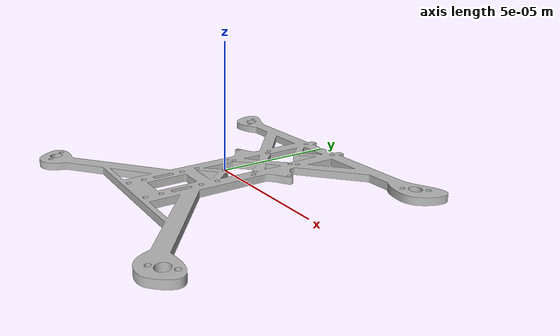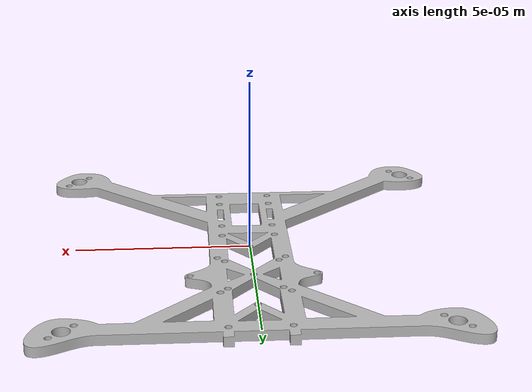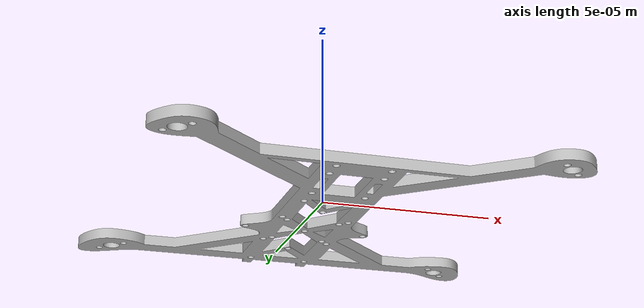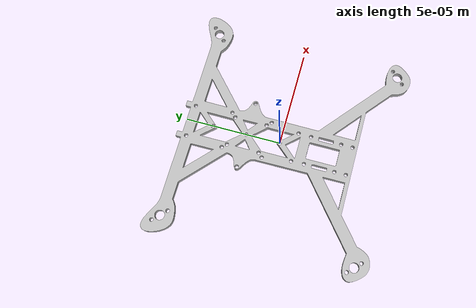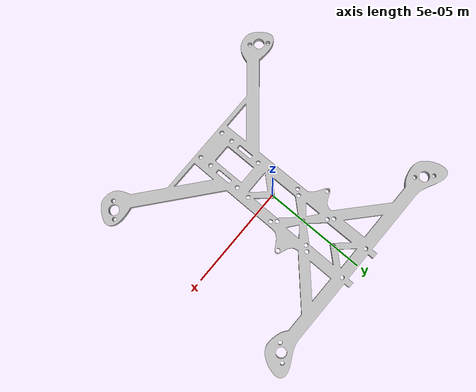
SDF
<?xml version="1.0" encoding="UTF-8"?>
<sdf version="1.9">
  <model name="drone">
    <self_collide>false</self_collide>
    <static>false</static>
    <!--                    BASE LINK                         -->
    <link name="base_link">
      <pose>0 0 0 0 0 0</pose>

      <inertial>
        <mass>1.3116</mass>
        <inertia>
          <ixx>0.003708</ixx>
          <iyy>0.002511</iyy>
          <izz>0.004013</izz>
          <ixy>0</ixy>
          <ixz>-2e-06</ixz>
          <iyz>-1.7e-05</iyz>
        </inertia>
      </inertial>

      <visual name="base_visual">
        <geometry>
          <mesh>
            <scale>0.001 0.001 0.001</scale>
            <uri>model://drone/meshes/base_link.stl</uri>
          </mesh>
        </geometry>
      </visual>

      <collision name="base_collision">
        <geometry>
          <mesh>
            <scale>0.001 0.001 0.001</scale>
            <uri>model://drone/meshes/base_link.stl</uri>
          </mesh>
        </geometry>
      </collision>

      <!-- ===================== SENSORS ===================== -->

      <!-- IMU -->
      <sensor name="imu_sensor" type="imu">
        <gz_frame_id>base_link</gz_frame_id>
        <always_on>1</always_on>
        <update_rate>250</update_rate>
        <imu>
          <angular_velocity>
            <x>
              <noise type="gaussian">
                <mean>0.0</mean>
                <stddev>0.00084</stddev>
              </noise>
            </x>
            <y>
              <noise type="gaussian">
                <mean>0.0</mean>
                <stddev>0.00084</stddev>
              </noise>
            </y>
            <z>
              <noise type="gaussian">
                <mean>0.0</mean>
                <stddev>0.00084</stddev>
              </noise>
            </z>
          </angular_velocity>

          <linear_acceleration>
            <x>
              <noise type="gaussian">
                <mean>0.0</mean>
                <stddev>0.006</stddev>
              </noise>
            </x>
            <y>
              <noise type="gaussian">
                <mean>0.0</mean>
                <stddev>0.006</stddev>
              </noise>
            </y>
            <z>
              <noise type="gaussian">
                <mean>0.0</mean>
                <stddev>0.006</stddev>
              </noise>
            </z>
          </linear_acceleration>
        </imu>
      </sensor>

      <!-- MAGNETOMETER -->
      <sensor name="magnetometer_sensor" type="magnetometer">
        <gz_frame_id>base_link</gz_frame_id>
        <always_on>1</always_on>
        <update_rate>100</update_rate>
        <magnetometer>
          <x>
            <noise type="gaussian"><stddev>0.0001</stddev></noise>
          </x>
          <y>
            <noise type="gaussian"><stddev>0.0001</stddev></noise>
          </y>
          <z>
            <noise type="gaussian"><stddev>0.0001</stddev></noise>
          </z>
        </magnetometer>
      </sensor>

      <!-- BAROMETER -->
      <sensor name="air_pressure_sensor" type="air_pressure">
        <gz_frame_id>base_link</gz_frame_id>
        <always_on>1</always_on>
        <update_rate>50</update_rate>
        <air_pressure>
          <pressure>
            <noise type="gaussian">
              <mean>0</mean>
              <stddev>1.3</stddev>
            </noise>
          </pressure>
        </air_pressure>
      </sensor>

      <!-- GPS -->
      <sensor name="navsat_sensor" type="navsat">
        <gz_frame_id>base_link</gz_frame_id>
        <always_on>1</always_on>
        <update_rate>30</update_rate>
      </sensor>

      <!-- CAMERA -->
      <sensor name="front_camera" type="camera">
        <gz_frame_id>base_link</gz_frame_id>
        <always_on>1</always_on>
        <update_rate>30</update_rate>
        <pose>0.05 0.0 0.03 0 0 0</pose>
        <camera>
          <horizontal_fov>2.705</horizontal_fov>
          <image>
            <width>640</width>
            <height>480</height>
            <format>R8G8B8</format>
          </image>
          <clip>
            <near>0.01</near>
            <far>100</far>
          </clip>
          <lens>
            <type>equidistant</type>
            <scale_to_hfov>true</scale_to_hfov>
          </lens>
        </camera>
        <topic>/drone/camera/image_raw</topic>
      </sensor>

    </link>

    <!-- ===================== ROTORS ===================== -->

    <link name="rotor_0">
      <pose>0.09 -0.09 0.02 0 0 0</pose>
      <inertial><mass>0.01</mass><inertia><ixx>1e-6</ixx><iyy>1e-6</iyy><izz>1e-6</izz></inertia></inertial>
    </link>
    <joint name="rotor_0_joint" type="revolute"><parent>base_link</parent><child>rotor_0</child><axis><xyz>0 0 1</xyz></axis></joint>

    <link name="rotor_1">
      <pose>-0.09 0.09 0.02 0 0 0</pose>
      <inertial><mass>0.01</mass><inertia><ixx>1e-6</ixx><iyy>1e-6</iyy><izz>1e-6</izz></inertia></inertial>
    </link>
    <joint name="rotor_1_joint" type="revolute"><parent>base_link</parent><child>rotor_1</child><axis><xyz>0 0 1</xyz></axis></joint>

    <link name="rotor_2">
      <pose>0.09 0.09 0.02 0 0 0</pose>
      <inertial><mass>0.01</mass><inertia><ixx>1e-6</ixx><iyy>1e-6</iyy><izz>1e-6</izz></inertia></inertial>
    </link>
    <joint name="rotor_2_joint" type="revolute"><parent>base_link</parent><child>rotor_2</child><axis><xyz>0 0 1</xyz></axis></joint>

    <link name="rotor_3">
      <pose>-0.09 -0.09 0.02 0 0 0</pose>
      <inertial><mass>0.01</mass><inertia><ixx>1e-6</ixx><iyy>1e-6</iyy><izz>1e-6</izz></inertia></inertial>
    </link>
    <joint name="rotor_3_joint" type="revolute"><parent>base_link</parent><child>rotor_3</child><axis><xyz>0 0 1</xyz></axis></joint>

    <!-- ===================== MOTOR MODELS ===================== -->

    <!-- MOTOR 0 -->
    <plugin filename="gz-sim-multicopter-motor-model-system"
            name="gz::sim::systems::MulticopterMotorModel">
      <motorNumber>0</motorNumber>
      <jointName>rotor_0_joint</jointName>
      <linkName>rotor_0</linkName>
      <turningDirection>ccw</turningDirection>
      <maxRotVelocity>2000</maxRotVelocity>
      <timeConstantUp>0.005</timeConstantUp>
      <timeConstantDown>0.010</timeConstantDown>
      <motorConstant>1.4e-5</motorConstant>
      <momentConstant>0.05</momentConstant>
      <rotorDragCoefficient>1e-4</rotorDragCoefficient>
      <rollingMomentCoefficient>1e-6</rollingMomentCoefficient>
      <commandSubTopic>command/motor_speed</commandSubTopic>
      <motorType>velocity</motorType>
    </plugin>

    <!-- MOTOR 1 -->
    <plugin filename="gz-sim-multicopter-motor-model-system"
            name="gz::sim::systems::MulticopterMotorModel">
      <motorNumber>1</motorNumber>
      <jointName>rotor_1_joint</jointName>
      <linkName>rotor_1</linkName>
      <turningDirection>ccw</turningDirection>
      <maxRotVelocity>2000</maxRotVelocity>
      <timeConstantUp>0.005</timeConstantUp>
      <timeConstantDown>0.010</timeConstantDown>
      <motorConstant>1.4e-5</motorConstant>
      <momentConstant>0.05</momentConstant>
      <rotorDragCoefficient>1e-4</rotorDragCoefficient>
      <rollingMomentCoefficient>1e-6</rollingMomentCoefficient>
      <commandSubTopic>command/motor_speed</commandSubTopic>
      <motorType>velocity</motorType>
    </plugin>

    <!-- MOTOR 2 -->
    <plugin filename="gz-sim-multicopter-motor-model-system"
            name="gz::sim::systems::MulticopterMotorModel">
      <motorNumber>2</motorNumber>
      <jointName>rotor_2_joint</jointName>
      <linkName>rotor_2</linkName>
      <turningDirection>cw</turningDirection>
      <maxRotVelocity>2000</maxRotVelocity>
      <timeConstantUp>0.005</timeConstantUp>
      <timeConstantDown>0.010</timeConstantDown>
      <motorConstant>1.4e-5</motorConstant>
      <momentConstant>0.05</momentConstant>
      <rotorDragCoefficient>1e-4</rotorDragCoefficient>
      <rollingMomentCoefficient>1e-6</rollingMomentCoefficient>
      <commandSubTopic>command/motor_speed</commandSubTopic>
      <motorType>velocity</motorType>
    </plugin>

    <!-- MOTOR 3 -->
    <plugin filename="gz-sim-multicopter-motor-model-system"
            name="gz::sim::systems::MulticopterMotorModel">
      <motorNumber>3</motorNumber>
      <jointName>rotor_3_joint</jointName>
      <linkName>rotor_3</linkName>
      <turningDirection>cw</turningDirection>
      <maxRotVelocity>2000</maxRotVelocity>
      <timeConstantUp>0.005</timeConstantUp>
      <timeConstantDown>0.010</timeConstantDown>
      <motorConstant>1.4e-5</motorConstant>
      <momentConstant>0.05</momentConstant>
      <rotorDragCoefficient>1e-4</rotorDragCoefficient>
      <rollingMomentCoefficient>1e-6</rollingMomentCoefficient>
      <commandSubTopic>command/motor_speed</commandSubTopic>
      <motorType>velocity</motorType>
    </plugin>

  </model>
</sdf>
